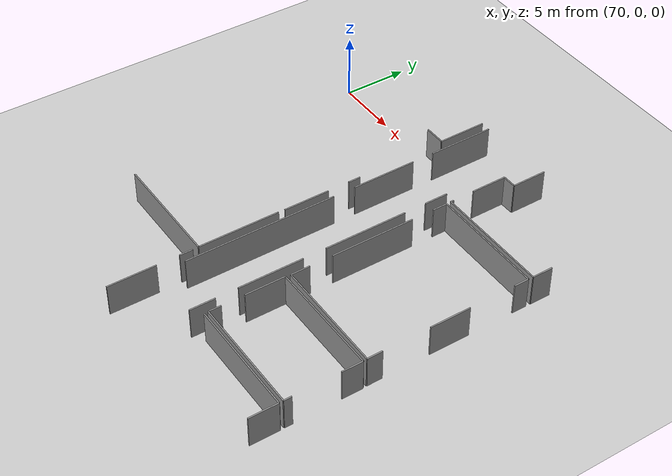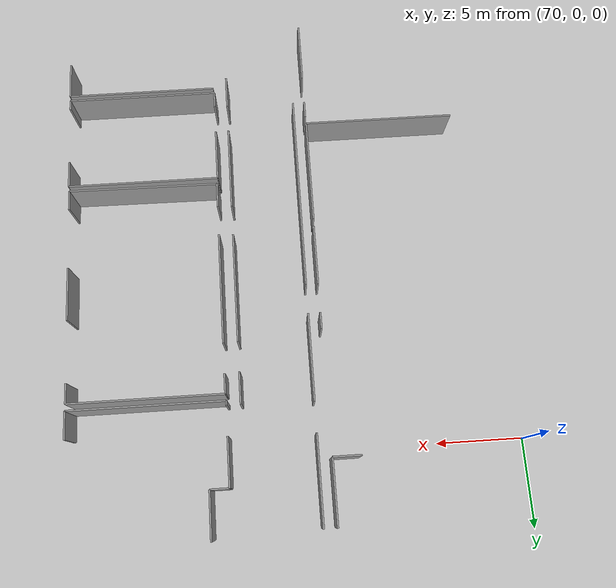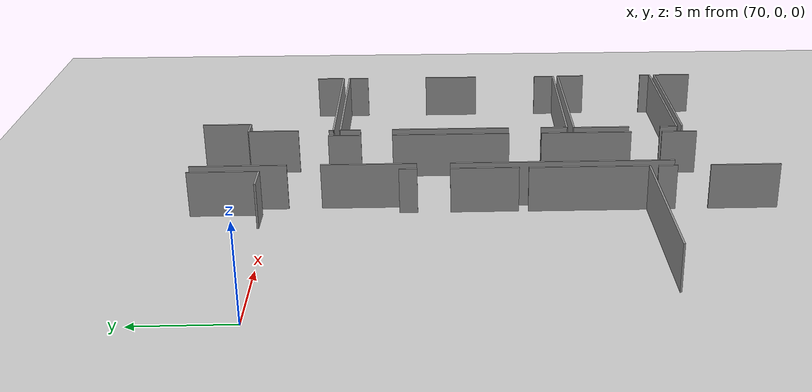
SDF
<sdf version="1.6">
 <world name="default">
  <model name="ground_plane">
   <static>1</static>
   <link name="link">
    <collision name="collision">
     <geometry><plane><normal>0 0 1</normal><size>100 100</size></plane></geometry>
     <surface><friction><ode><mu>100</mu><mu2>50</mu2></ode></friction></surface>
    </collision>
    <visual name="visual">
     <cast_shadows>0</cast_shadows>
     <geometry><plane><normal>0 0 1</normal><size>100 100</size></plane></geometry>
     <material>
      <script><uri>file://media/materials/scripts/gazebo.material</uri><name>Gazebo/Grey</name></script>
     </material>
    </visual>
   </link>
  </model>
  <model name="0510035741_A_40_1_104">
   <static>1</static>
   <link name="Wall_456">
    <collision name="Wall_456_Collision">
     <geometry><box><size>11.8790203263 0.1 2.5</size></box></geometry>
     <pose>5.93951016313 0 1.25 0 0 0</pose>
    </collision>
    <visual name="Wall_456_Visual">
     <pose>5.93951016313 0 1.25 0 0 0</pose>
     <geometry><box><size>11.8790203263 0.1 2.5</size></box></geometry>
     <material>
      <script><uri>file://media/materials/scripts/gazebo.material</uri><name>Gazebo/Grey</name></script>
      <ambient>1 1 1 1</ambient>
     </material>
    </visual>
    <pose>175.975514507 -71.0048831288 0 0 0 1.57079632679</pose>
   </link>
   <link name="Wall_457">
    <collision name="Wall_457_Collision">
     <geometry><box><size>5.05330801811 0.1 2.5</size></box></geometry>
     <pose>2.52665400906 0 1.25 0 0 0</pose>
    </collision>
    <visual name="Wall_457_Visual">
     <pose>2.52665400906 0 1.25 0 0 0</pose>
     <geometry><box><size>5.05330801811 0.1 2.5</size></box></geometry>
     <material>
      <script><uri>file://media/materials/scripts/gazebo.material</uri><name>Gazebo/Grey</name></script>
      <ambient>1 1 1 1</ambient>
     </material>
    </visual>
    <pose>175.975514507 -57.3638724672 0 0 0 1.57079632679</pose>
   </link>
   <link name="Wall_458">
    <collision name="Wall_458_Collision">
     <geometry><box><size>5.08632787447 0.1 2.5</size></box></geometry>
     <pose>2.54316393724 0 1.25 0 0 0</pose>
    </collision>
    <visual name="Wall_458_Visual">
     <pose>2.54316393724 0 1.25 0 0 0</pose>
     <geometry><box><size>5.08632787447 0.1 2.5</size></box></geometry>
     <material>
      <script><uri>file://media/materials/scripts/gazebo.material</uri><name>Gazebo/Grey</name></script>
      <ambient>1 1 1 1</ambient>
     </material>
    </visual>
    <pose>175.975514507 -50.5579720728 0 0 0 1.57079632679</pose>
   </link>
   <link name="Wall_462">
    <collision name="Wall_462_Collision">
     <geometry><box><size>1.82879204475 0.1 2.5</size></box></geometry>
     <pose>0.914396022377 0 1.25 0 0 0</pose>
    </collision>
    <visual name="Wall_462_Visual">
     <pose>0.914396022377 0 1.25 0 0 0</pose>
     <geometry><box><size>1.82879204475 0.1 2.5</size></box></geometry>
     <material>
      <script><uri>file://media/materials/scripts/gazebo.material</uri><name>Gazebo/Grey</name></script>
      <ambient>1 1 1 1</ambient>
     </material>
    </visual>
    <pose>180.115696497 -52.4058140347 0 0 0 -1.57079632679</pose>
   </link>
   <link name="Wall_463">
    <collision name="Wall_463_Collision">
     <geometry><box><size>6.51659565281 0.1 2.5</size></box></geometry>
     <pose>3.2582978264 0 1.25 0 0 0</pose>
    </collision>
    <visual name="Wall_463_Visual">
     <pose>3.2582978264 0 1.25 0 0 0</pose>
     <geometry><box><size>6.51659565281 0.1 2.5</size></box></geometry>
     <material>
      <script><uri>file://media/materials/scripts/gazebo.material</uri><name>Gazebo/Grey</name></script>
      <ambient>1 1 1 1</ambient>
     </material>
    </visual>
    <pose>180.115696497 -55.9734825154 0 0 0 -1.57079632679</pose>
   </link>
   <link name="Wall_464">
    <collision name="Wall_464_Collision">
     <geometry><box><size>5.04924403579 0.1 2.5</size></box></geometry>
     <pose>2.52462201789 0 1.25 0 0 0</pose>
    </collision>
    <visual name="Wall_464_Visual">
     <pose>2.52462201789 0 1.25 0 0 0</pose>
     <geometry><box><size>5.04924403579 0.1 2.5</size></box></geometry>
     <material>
      <script><uri>file://media/materials/scripts/gazebo.material</uri><name>Gazebo/Grey</name></script>
      <ambient>1 1 1 1</ambient>
     </material>
    </visual>
    <pose>180.115696497 -64.3026142836 0 0 0 -1.57079632679</pose>
   </link>
   <link name="Wall_465">
    <collision name="Wall_465_Collision">
     <geometry><box><size>1.96569744922 0.1 2.5</size></box></geometry>
     <pose>0.982848724608 0 1.25 0 0 0</pose>
    </collision>
    <visual name="Wall_465_Visual">
     <pose>0.982848724608 0 1.25 0 0 0</pose>
     <geometry><box><size>1.96569744922 0.1 2.5</size></box></geometry>
     <material>
      <script><uri>file://media/materials/scripts/gazebo.material</uri><name>Gazebo/Grey</name></script>
      <ambient>1 1 1 1</ambient>
     </material>
    </visual>
    <pose>180.115696497 -71.0747328249 0 0 0 -1.57079632679</pose>
   </link>
   <link name="Wall_480">
    <collision name="Wall_480_Collision">
     <geometry><box><size>3.74495970943 0.1 2.5</size></box></geometry>
     <pose>1.87247985471 0 1.25 0 0 0</pose>
    </collision>
    <visual name="Wall_480_Visual">
     <pose>1.87247985471 0 1.25 0 0 0</pose>
     <geometry><box><size>3.74495970943 0.1 2.5</size></box></geometry>
     <material>
      <script><uri>file://media/materials/scripts/gazebo.material</uri><name>Gazebo/Grey</name></script>
      <ambient>1 1 1 1</ambient>
     </material>
    </visual>
    <pose>175.208437843 -45.4617382414 0 0 0 -1.57079632679</pose>
   </link>
   <link name="Wall_481">
    <collision name="Wall_481_Collision">
     <geometry><box><size>1.65200881376 0.1 2.5</size></box></geometry>
     <pose>0.826004406881 0 1.25 0 0 0</pose>
    </collision>
    <visual name="Wall_481_Visual">
     <pose>0.826004406881 0 1.25 0 0 0</pose>
     <geometry><box><size>1.65200881376 0.1 2.5</size></box></geometry>
     <material>
      <script><uri>file://media/materials/scripts/gazebo.material</uri><name>Gazebo/Grey</name></script>
      <ambient>1 1 1 1</ambient>
     </material>
    </visual>
    <pose>175.208437843 -49.2066979509 0 0 0 3.14159265359</pose>
   </link>
   <link name="Wall_495">
    <collision name="Wall_495_Collision">
     <geometry><box><size>0.960369822391 0.1 2.5</size></box></geometry>
     <pose>0.480184911196 0 1.25 0 0 0</pose>
    </collision>
    <visual name="Wall_495_Visual">
     <pose>0.480184911196 0 1.25 0 0 0</pose>
     <geometry><box><size>0.960369822391 0.1 2.5</size></box></geometry>
     <material>
      <script><uri>file://media/materials/scripts/gazebo.material</uri><name>Gazebo/Grey</name></script>
      <ambient>1 1 1 1</ambient>
     </material>
    </visual>
    <pose>175.265841594 -56.4281405376 0 0 0 -1.57079632679</pose>
   </link>
   <link name="Wall_496">
    <collision name="Wall_496_Collision">
     <geometry><box><size>3.60043433811 0.1 2.5</size></box></geometry>
     <pose>1.80021716906 0 1.25 0 0 0</pose>
    </collision>
    <visual name="Wall_496_Visual">
     <pose>1.80021716906 0 1.25 0 0 0</pose>
     <geometry><box><size>3.60043433811 0.1 2.5</size></box></geometry>
     <material>
      <script><uri>file://media/materials/scripts/gazebo.material</uri><name>Gazebo/Grey</name></script>
      <ambient>1 1 1 1</ambient>
     </material>
    </visual>
    <pose>175.265841594 -59.1113848655 0 0 0 -1.57079632679</pose>
   </link>
   <link name="Wall_501">
    <collision name="Wall_501_Collision">
     <geometry><box><size>6.34387640414 0.1 2.5</size></box></geometry>
     <pose>3.17193820207 0 1.25 0 0 0</pose>
    </collision>
    <visual name="Wall_501_Visual">
     <pose>3.17193820207 0 1.25 0 0 0</pose>
     <geometry><box><size>6.34387640414 0.1 2.5</size></box></geometry>
     <material>
      <script><uri>file://media/materials/scripts/gazebo.material</uri><name>Gazebo/Grey</name></script>
      <ambient>1 1 1 1</ambient>
     </material>
    </visual>
    <pose>175.237647716 -63.2078790457 0 0 0 -1.57079632679</pose>
   </link>
   <link name="Wall_502">
    <collision name="Wall_502_Collision">
     <geometry><box><size>9.07538240238 0.1 2.5</size></box></geometry>
     <pose>4.53769120119 0 1.25 0 0 0</pose>
    </collision>
    <visual name="Wall_502_Visual">
     <pose>4.53769120119 0 1.25 0 0 0</pose>
     <geometry><box><size>9.07538240238 0.1 2.5</size></box></geometry>
     <material>
      <script><uri>file://media/materials/scripts/gazebo.material</uri><name>Gazebo/Grey</name></script>
      <ambient>1 1 1 1</ambient>
     </material>
    </visual>
    <pose>175.237647716 -69.5517554499 0 0 0 3.14094893691</pose>
   </link>
   <link name="Wall_506">
    <collision name="Wall_506_Collision">
     <geometry><box><size>1.01599558042 0.1 2.5</size></box></geometry>
     <pose>0.50799779021 0 1.25 0 0 0</pose>
    </collision>
    <visual name="Wall_506_Visual">
     <pose>0.50799779021 0 1.25 0 0 0</pose>
     <geometry><box><size>1.01599558042 0.1 2.5</size></box></geometry>
     <material>
      <script><uri>file://media/materials/scripts/gazebo.material</uri><name>Gazebo/Grey</name></script>
      <ambient>1 1 1 1</ambient>
     </material>
    </visual>
    <pose>175.261015615 -70.0145414367 0 0 0 -1.57079632679</pose>
   </link>
   <link name="Wall_507">
    <collision name="Wall_507_Collision">
     <geometry><box><size>3.71041585969 0.1 2.5</size></box></geometry>
     <pose>1.85520792985 0 1.25 0 0 0</pose>
    </collision>
    <visual name="Wall_507_Visual">
     <pose>1.85520792985 0 1.25 0 0 0</pose>
     <geometry><box><size>3.71041585969 0.1 2.5</size></box></geometry>
     <material>
      <script><uri>file://media/materials/scripts/gazebo.material</uri><name>Gazebo/Grey</name></script>
      <ambient>1 1 1 1</ambient>
     </material>
    </visual>
    <pose>175.261015615 -72.7755094265 0 0 0 -1.57079632679</pose>
   </link>
   <link name="Wall_553">
    <collision name="Wall_553_Collision">
     <geometry><box><size>9.04210666684 0.1 2.5</size></box></geometry>
     <pose>4.52105333342 0 1.25 0 0 0</pose>
    </collision>
    <visual name="Wall_553_Visual">
     <pose>4.52105333342 0 1.25 0 0 0</pose>
     <geometry><box><size>9.04210666684 0.1 2.5</size></box></geometry>
     <material>
      <script><uri>file://media/materials/scripts/gazebo.material</uri><name>Gazebo/Grey</name></script>
      <ambient>1 1 1 1</ambient>
     </material>
    </visual>
    <pose>180.950844864 -72.3777471568 0 0 0 0.0</pose>
   </link>
   <link name="Wall_554">
    <collision name="Wall_554_Collision">
     <geometry><box><size>2.23087229571 0.1 2.5</size></box></geometry>
     <pose>1.11543614785 0 1.25 0 0 0</pose>
    </collision>
    <visual name="Wall_554_Visual">
     <pose>1.11543614785 0 1.25 0 0 0</pose>
     <geometry><box><size>2.23087229571 0.1 2.5</size></box></geometry>
     <material>
      <script><uri>file://media/materials/scripts/gazebo.material</uri><name>Gazebo/Grey</name></script>
      <ambient>1 1 1 1</ambient>
     </material>
    </visual>
    <pose>189.992951531 -72.3777471568 0 0 0 -1.57079632679</pose>
   </link>
   <link name="Wall_558">
    <collision name="Wall_558_Collision">
     <geometry><box><size>0.958591830126 0.1 2.5</size></box></geometry>
     <pose>0.479295915063 0 1.25 0 0 0</pose>
    </collision>
    <visual name="Wall_558_Visual">
     <pose>0.479295915063 0 1.25 0 0 0</pose>
     <geometry><box><size>0.958591830126 0.1 2.5</size></box></geometry>
     <material>
      <script><uri>file://media/materials/scripts/gazebo.material</uri><name>Gazebo/Grey</name></script>
      <ambient>1 1 1 1</ambient>
     </material>
    </visual>
    <pose>180.901315079 -72.0643125202 0 0 0 1.57079632679</pose>
   </link>
   <link name="Wall_559">
    <collision name="Wall_559_Collision">
     <geometry><box><size>3.13053638217 0.1 2.5</size></box></geometry>
     <pose>1.56526819108 0 1.25 0 0 0</pose>
    </collision>
    <visual name="Wall_559_Visual">
     <pose>1.56526819108 0 1.25 0 0 0</pose>
     <geometry><box><size>3.13053638217 0.1 2.5</size></box></geometry>
     <material>
      <script><uri>file://media/materials/scripts/gazebo.material</uri><name>Gazebo/Grey</name></script>
      <ambient>1 1 1 1</ambient>
     </material>
    </visual>
    <pose>180.901315079 -69.3345863945 0 0 0 1.57079632679</pose>
   </link>
   <link name="Wall_560">
    <collision name="Wall_560_Collision">
     <geometry><box><size>9.07614251878 0.1 2.5</size></box></geometry>
     <pose>4.53807125939 0 1.25 0 0 0</pose>
    </collision>
    <visual name="Wall_560_Visual">
     <pose>4.53807125939 0 1.25 0 0 0</pose>
     <geometry><box><size>9.07614251878 0.1 2.5</size></box></geometry>
     <material>
      <script><uri>file://media/materials/scripts/gazebo.material</uri><name>Gazebo/Grey</name></script>
      <ambient>1 1 1 1</ambient>
     </material>
    </visual>
    <pose>180.901315079 -66.2040500124 0 0 0 0.0</pose>
   </link>
   <link name="Wall_561">
    <collision name="Wall_561_Collision">
     <geometry><box><size>1.61340098171 0.1 2.5</size></box></geometry>
     <pose>0.806700490853 0 1.25 0 0 0</pose>
    </collision>
    <visual name="Wall_561_Visual">
     <pose>0.806700490853 0 1.25 0 0 0</pose>
     <geometry><box><size>1.61340098171 0.1 2.5</size></box></geometry>
     <material>
      <script><uri>file://media/materials/scripts/gazebo.material</uri><name>Gazebo/Grey</name></script>
      <ambient>1 1 1 1</ambient>
     </material>
    </visual>
    <pose>189.977457598 -66.2040500124 0 0 0 -1.57079632679</pose>
   </link>
   <link name="Wall_562">
    <collision name="Wall_562_Collision">
     <geometry><box><size>0.610105346042 0.1 2.5</size></box></geometry>
     <pose>0.305052673021 0 1.25 0 0 0</pose>
    </collision>
    <visual name="Wall_562_Visual">
     <pose>0.305052673021 0 1.25 0 0 0</pose>
     <geometry><box><size>0.610105346042 0.1 2.5</size></box></geometry>
     <material>
      <script><uri>file://media/materials/scripts/gazebo.material</uri><name>Gazebo/Grey</name></script>
      <ambient>1 1 1 1</ambient>
     </material>
    </visual>
    <pose>189.977457598 -71.4542071742 0 0 0 -1.57079632679</pose>
   </link>
   <link name="Wall_563">
    <collision name="Wall_563_Collision">
     <geometry><box><size>9.07614251878 0.1 2.5</size></box></geometry>
     <pose>4.53807125939 0 1.25 0 0 0</pose>
    </collision>
    <visual name="Wall_563_Visual">
     <pose>4.53807125939 0 1.25 0 0 0</pose>
     <geometry><box><size>9.07614251878 0.1 2.5</size></box></geometry>
     <material>
      <script><uri>file://media/materials/scripts/gazebo.material</uri><name>Gazebo/Grey</name></script>
      <ambient>1 1 1 1</ambient>
     </material>
    </visual>
    <pose>189.977457598 -72.0643125202 0 0 0 3.14159265359</pose>
   </link>
   <link name="Wall_564">
    <collision name="Wall_564_Collision">
     <geometry><box><size>1.47979756288 0.1 2.5</size></box></geometry>
     <pose>0.73989878144 0 1.25 0 0 0</pose>
    </collision>
    <visual name="Wall_564_Visual">
     <pose>0.73989878144 0 1.25 0 0 0</pose>
     <geometry><box><size>1.47979756288 0.1 2.5</size></box></geometry>
     <material>
      <script><uri>file://media/materials/scripts/gazebo.material</uri><name>Gazebo/Grey</name></script>
      <ambient>1 1 1 1</ambient>
     </material>
    </visual>
    <pose>180.959480826 -65.8179716918 0 0 0 1.57079632679</pose>
   </link>
   <link name="Wall_565">
    <collision name="Wall_565_Collision">
     <geometry><box><size>6.58009537659 0.1 2.5</size></box></geometry>
     <pose>3.29004768829 0 1.25 0 0 0</pose>
    </collision>
    <visual name="Wall_565_Visual">
     <pose>3.29004768829 0 1.25 0 0 0</pose>
     <geometry><box><size>6.58009537659 0.1 2.5</size></box></geometry>
     <material>
      <script><uri>file://media/materials/scripts/gazebo.material</uri><name>Gazebo/Grey</name></script>
      <ambient>1 1 1 1</ambient>
     </material>
    </visual>
    <pose>180.959480826 -62.5266540091 0 0 0 1.57079632679</pose>
   </link>
   <link name="Wall_566">
    <collision name="Wall_566_Collision">
     <geometry><box><size>1.15112299261 0.1 2.5</size></box></geometry>
     <pose>0.575561496307 0 1.25 0 0 0</pose>
    </collision>
    <visual name="Wall_566_Visual">
     <pose>0.575561496307 0 1.25 0 0 0</pose>
     <geometry><box><size>1.15112299261 0.1 2.5</size></box></geometry>
     <material>
      <script><uri>file://media/materials/scripts/gazebo.material</uri><name>Gazebo/Grey</name></script>
      <ambient>1 1 1 1</ambient>
     </material>
    </visual>
    <pose>180.959480826 -54.179996317 0 0 0 1.57079632679</pose>
   </link>
   <link name="Wall_567">
    <collision name="Wall_567_Collision">
     <geometry><box><size>8.97962293864 0.1 2.5</size></box></geometry>
     <pose>4.48981146932 0 1.25 0 0 0</pose>
    </collision>
    <visual name="Wall_567_Visual">
     <pose>4.48981146932 0 1.25 0 0 0</pose>
     <geometry><box><size>8.97962293864 0.1 2.5</size></box></geometry>
     <material>
      <script><uri>file://media/materials/scripts/gazebo.material</uri><name>Gazebo/Grey</name></script>
      <ambient>1 1 1 1</ambient>
     </material>
    </visual>
    <pose>180.959480826 -53.0288733244 0 0 0 0.0</pose>
   </link>
   <link name="Wall_568">
    <collision name="Wall_568_Collision">
     <geometry><box><size>1.15239298709 0.1 2.5</size></box></geometry>
     <pose>0.576196493545 0 1.25 0 0 0</pose>
    </collision>
    <visual name="Wall_568_Visual">
     <pose>0.576196493545 0 1.25 0 0 0</pose>
     <geometry><box><size>1.15239298709 0.1 2.5</size></box></geometry>
     <material>
      <script><uri>file://media/materials/scripts/gazebo.material</uri><name>Gazebo/Grey</name></script>
      <ambient>1 1 1 1</ambient>
     </material>
    </visual>
    <pose>189.939103765 -53.0288733244 0 0 0 -1.57079632679</pose>
   </link>
   <link name="Wall_569">
    <collision name="Wall_569_Collision">
     <geometry><box><size>3.16914421422 0.1 2.5</size></box></geometry>
     <pose>1.58457210711 0 1.25 0 0 0</pose>
    </collision>
    <visual name="Wall_569_Visual">
     <pose>1.58457210711 0 1.25 0 0 0</pose>
     <geometry><box><size>3.16914421422 0.1 2.5</size></box></geometry>
     <material>
      <script><uri>file://media/materials/scripts/gazebo.material</uri><name>Gazebo/Grey</name></script>
      <ambient>1 1 1 1</ambient>
     </material>
    </visual>
    <pose>189.939103765 -57.8302144386 0 0 0 -1.57079632679</pose>
   </link>
   <link name="Wall_570">
    <collision name="Wall_570_Collision">
     <geometry><box><size>1.19074682025 0.1 2.5</size></box></geometry>
     <pose>0.595373410126 0 1.25 0 0 0</pose>
    </collision>
    <visual name="Wall_570_Visual">
     <pose>0.595373410126 0 1.25 0 0 0</pose>
     <geometry><box><size>1.19074682025 0.1 2.5</size></box></geometry>
     <material>
      <script><uri>file://media/materials/scripts/gazebo.material</uri><name>Gazebo/Grey</name></script>
      <ambient>1 1 1 1</ambient>
     </material>
    </visual>
    <pose>189.939103765 -64.7059645291 0 0 0 -1.57079632679</pose>
   </link>
   <link name="Wall_571">
    <collision name="Wall_571_Collision">
     <geometry><box><size>8.97996815439 0.1 2.5</size></box></geometry>
     <pose>4.48998407719 0 1.25 0 0 0</pose>
    </collision>
    <visual name="Wall_571_Visual">
     <pose>4.48998407719 0 1.25 0 0 0</pose>
     <geometry><box><size>8.97996815439 0.1 2.5</size></box></geometry>
     <material>
      <script><uri>file://media/materials/scripts/gazebo.material</uri><name>Gazebo/Grey</name></script>
      <ambient>1 1 1 1</ambient>
     </material>
    </visual>
    <pose>189.939103765 -65.8967113493 0 0 0 3.13282417411</pose>
   </link>
   <link name="Wall_572">
    <collision name="Wall_572_Collision">
     <geometry><box><size>0.252728900629 0.1 2.5</size></box></geometry>
     <pose>0.126364450315 0 1.25 0 0 0</pose>
    </collision>
    <visual name="Wall_572_Visual">
     <pose>0.126364450315 0 1.25 0 0 0</pose>
     <geometry><box><size>0.252728900629 0.1 2.5</size></box></geometry>
     <material>
      <script><uri>file://media/materials/scripts/gazebo.material</uri><name>Gazebo/Grey</name></script>
      <ambient>1 1 1 1</ambient>
     </material>
    </visual>
    <pose>180.924682978 -52.6471129851 0 0 0 1.57079632679</pose>
   </link>
   <link name="Wall_573">
    <collision name="Wall_573_Collision">
     <geometry><box><size>2.78281189477 0.1 2.5</size></box></geometry>
     <pose>1.39140594738 0 1.25 0 0 0</pose>
    </collision>
    <visual name="Wall_573_Visual">
     <pose>1.39140594738 0 1.25 0 0 0</pose>
     <geometry><box><size>2.78281189477 0.1 2.5</size></box></geometry>
     <material>
      <script><uri>file://media/materials/scripts/gazebo.material</uri><name>Gazebo/Grey</name></script>
      <ambient>1 1 1 1</ambient>
     </material>
    </visual>
    <pose>180.924682978 -50.6885275049 0 0 0 1.57079632679</pose>
   </link>
   <link name="Wall_574">
    <collision name="Wall_574_Collision">
     <geometry><box><size>1.0949892368 0.1 2.5</size></box></geometry>
     <pose>0.547494618398 0 1.25 0 0 0</pose>
    </collision>
    <visual name="Wall_574_Visual">
     <pose>0.547494618398 0 1.25 0 0 0</pose>
     <geometry><box><size>1.0949892368 0.1 2.5</size></box></geometry>
     <material>
      <script><uri>file://media/materials/scripts/gazebo.material</uri><name>Gazebo/Grey</name></script>
      <ambient>1 1 1 1</ambient>
     </material>
    </visual>
    <pose>180.924682978 -47.9057156101 0 0 0 0.0</pose>
   </link>
   <link name="Wall_575">
    <collision name="Wall_575_Collision">
     <geometry><box><size>2.70813621961 0.1 2.5</size></box></geometry>
     <pose>1.3540681098 0 1.25 0 0 0</pose>
    </collision>
    <visual name="Wall_575_Visual">
     <pose>1.3540681098 0 1.25 0 0 0</pose>
     <geometry><box><size>2.70813621961 0.1 2.5</size></box></geometry>
     <material>
      <script><uri>file://media/materials/scripts/gazebo.material</uri><name>Gazebo/Grey</name></script>
      <ambient>1 1 1 1</ambient>
     </material>
    </visual>
    <pose>182.019672214 -47.9057156101 0 0 0 1.57079632679</pose>
   </link>
   <link name="Wall_578">
    <collision name="Wall_578_Collision">
     <geometry><box><size>1.59739905131 0.1 2.5</size></box></geometry>
     <pose>0.798699525657 0 1.25 0 0 0</pose>
    </collision>
    <visual name="Wall_578_Visual">
     <pose>0.798699525657 0 1.25 0 0 0</pose>
     <geometry><box><size>1.59739905131 0.1 2.5</size></box></geometry>
     <material>
      <script><uri>file://media/materials/scripts/gazebo.material</uri><name>Gazebo/Grey</name></script>
      <ambient>1 1 1 1</ambient>
     </material>
    </visual>
    <pose>189.96323366 -51.0502219315 0 0 0 -1.57079632679</pose>
   </link>
   <link name="Wall_579">
    <collision name="Wall_579_Collision">
     <geometry><box><size>9.03855069658 0.1 2.5</size></box></geometry>
     <pose>4.51927534829 0 1.25 0 0 0</pose>
    </collision>
    <visual name="Wall_579_Visual">
     <pose>4.51927534829 0 1.25 0 0 0</pose>
     <geometry><box><size>9.03855069658 0.1 2.5</size></box></geometry>
     <material>
      <script><uri>file://media/materials/scripts/gazebo.material</uri><name>Gazebo/Grey</name></script>
      <ambient>1 1 1 1</ambient>
     </material>
    </visual>
    <pose>189.96323366 -52.6476209828 0 0 0 3.14153645013</pose>
   </link>
   <pose>-93.95 49.6727497285 0 0 0 0</pose>
  </model>
 </world>
</sdf>
